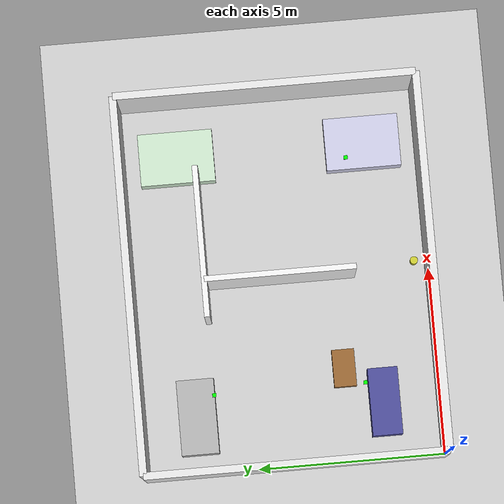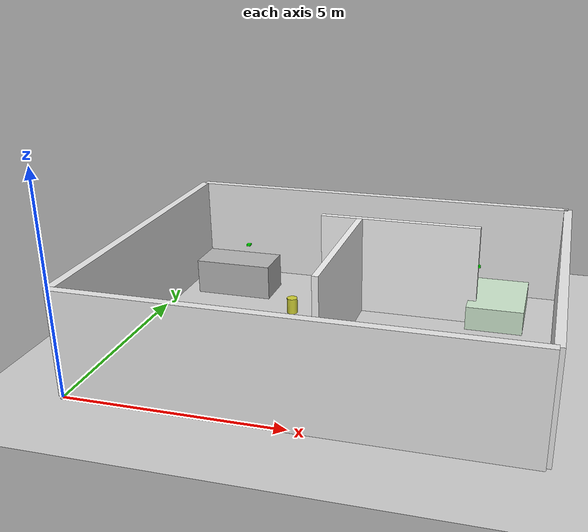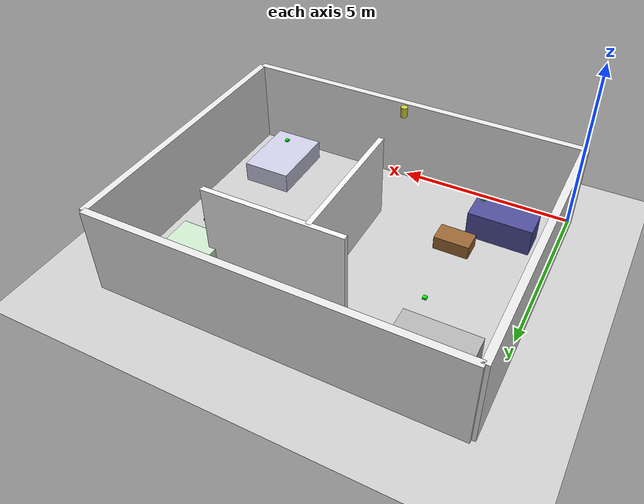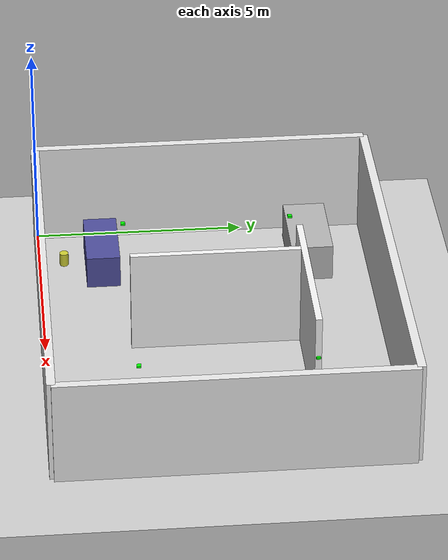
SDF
<sdf version="1.8">
 <world name="olympus_apartment">
  <physics name="default_physics" default="0" type="ode">
   <max_step_size>0.004</max_step_size>
   <real_time_factor>1.0</real_time_factor>
   <real_time_update_rate>250</real_time_update_rate>
  </physics>
  <scene>
   <sky><clouds><speed>12</speed></clouds></sky>
   <ambient>0.4 0.4 0.4 1</ambient>
   <background>0.7 0.7 0.7 1</background>
   <shadows>1</shadows>
  </scene>
  <light type="directional" name="sun">
   <pose>0 0 10 0 0 0</pose>
   <diffuse>0.8 0.8 0.8 1</diffuse>
   <specular>0.2 0.2 0.2 1</specular>
   <attenuation>
    <range>1000</range>
    <constant>0.9</constant>
    <linear>0.01</linear>
    <quadratic>0.001</quadratic>
   </attenuation>
   <direction>-0.5 0.1 -0.9</direction>
  </light>
  <light type="point" name="living_room_light">
   <pose>2 2 2.5 0 0 0</pose>
   <diffuse>1.0 1.0 0.9 1</diffuse>
   <specular>0.1 0.1 0.1 1</specular>
   <attenuation>
    <range>8</range>
    <constant>0.5</constant>
    <linear>0.2</linear>
    <quadratic>0.01</quadratic>
   </attenuation>
   <cast_shadows>false</cast_shadows>
  </light>
  <light type="point" name="bedroom1_light">
   <pose>8 2 2.5 0 0 0</pose>
   <diffuse>1.0 1.0 0.9 1</diffuse>
   <specular>0.1 0.1 0.1 1</specular>
   <attenuation>
    <range>6</range>
    <constant>0.5</constant>
    <linear>0.2</linear>
    <quadratic>0.01</quadratic>
   </attenuation>
   <cast_shadows>false</cast_shadows>
  </light>
  <light type="point" name="bedroom2_light">
   <pose>8 6 2.5 0 0 0</pose>
   <diffuse>1.0 1.0 0.9 1</diffuse>
   <specular>0.1 0.1 0.1 1</specular>
   <attenuation>
    <range>6</range>
    <constant>0.5</constant>
    <linear>0.2</linear>
    <quadratic>0.01</quadratic>
   </attenuation>
   <cast_shadows>false</cast_shadows>
  </light>
  <light type="point" name="kitchen_light">
   <pose>2 6 2.5 0 0 0</pose>
   <diffuse>1.0 1.0 0.9 1</diffuse>
   <specular>0.1 0.1 0.1 1</specular>
   <attenuation>
    <range>6</range>
    <constant>0.5</constant>
    <linear>0.2</linear>
    <quadratic>0.01</quadratic>
   </attenuation>
   <cast_shadows>false</cast_shadows>
  </light>
  <model name="ground_plane">
   <static>true</static>
   <link name="link">
    <collision name="collision">
     <geometry><plane><normal>0 0 1</normal><size>20 20</size></plane></geometry>
    </collision>
    <visual name="visual">
     <geometry><plane><normal>0 0 1</normal><size>20 20</size></plane></geometry>
     <material>
      <ambient>0.8 0.8 0.8 1</ambient>
      <diffuse>0.8 0.8 0.8 1</diffuse>
      <specular>0.0 0.0 0.0 1</specular>
     </material>
    </visual>
   </link>
  </model>
  <model name="wall_north">
   <static>true</static>
   <pose>5 8 1.25 0 0 0</pose>
   <link name="link">
    <collision name="collision"><geometry><box><size>10 0.2 2.5</size></box></geometry></collision>
    <visual name="visual">
     <geometry><box><size>10 0.2 2.5</size></box></geometry>
     <material><ambient>0.9 0.9 0.9 1</ambient><diffuse>0.9 0.9 0.9 1</diffuse></material>
    </visual>
   </link>
  </model>
  <model name="wall_south">
   <static>true</static>
   <pose>5 0 1.25 0 0 0</pose>
   <link name="link">
    <collision name="collision"><geometry><box><size>10 0.2 2.5</size></box></geometry></collision>
    <visual name="visual">
     <geometry><box><size>10 0.2 2.5</size></box></geometry>
     <material><ambient>0.9 0.9 0.9 1</ambient><diffuse>0.9 0.9 0.9 1</diffuse></material>
    </visual>
   </link>
  </model>
  <model name="wall_east">
   <static>true</static>
   <pose>10 4 1.25 0 0 0</pose>
   <link name="link">
    <collision name="collision"><geometry><box><size>0.2 8 2.5</size></box></geometry></collision>
    <visual name="visual">
     <geometry><box><size>0.2 8 2.5</size></box></geometry>
     <material><ambient>0.9 0.9 0.9 1</ambient><diffuse>0.9 0.9 0.9 1</diffuse></material>
    </visual>
   </link>
  </model>
  <model name="wall_west">
   <static>true</static>
   <pose>0 4 1.25 0 0 0</pose>
   <link name="link">
    <collision name="collision"><geometry><box><size>0.2 8 2.5</size></box></geometry></collision>
    <visual name="visual">
     <geometry><box><size>0.2 8 2.5</size></box></geometry>
     <material><ambient>0.9 0.9 0.9 1</ambient><diffuse>0.9 0.9 0.9 1</diffuse></material>
    </visual>
   </link>
  </model>
  <model name="wall_interior_1">
   <static>true</static>
   <pose>5 4 1.25 0 0 1.5708</pose>
   <link name="link">
    <collision name="collision"><geometry><box><size>4 0.15 2.5</size></box></geometry></collision>
    <visual name="visual">
     <geometry><box><size>4 0.15 2.5</size></box></geometry>
     <material><ambient>0.95 0.95 0.95 1</ambient><diffuse>0.95 0.95 0.95 1</diffuse></material>
    </visual>
   </link>
  </model>
  <model name="wall_interior_2">
   <static>true</static>
   <pose>6 6 1.25 0 0 0</pose>
   <link name="link">
    <collision name="collision"><geometry><box><size>4 0.15 2.5</size></box></geometry></collision>
    <visual name="visual">
     <geometry><box><size>4 0.15 2.5</size></box></geometry>
     <material><ambient>0.95 0.95 0.95 1</ambient><diffuse>0.95 0.95 0.95 1</diffuse></material>
    </visual>
   </link>
  </model>
  <model name="sofa">
   <static>true</static>
   <pose>1.5 1.5 0.4 0 0 0</pose>
   <link name="link">
    <collision name="collision"><geometry><box><size>1.8 0.8 0.8</size></box></geometry></collision>
    <visual name="visual">
     <geometry><box><size>1.8 0.8 0.8</size></box></geometry>
     <material><ambient>0.3 0.3 0.6 1</ambient><diffuse>0.3 0.3 0.6 1</diffuse></material>
    </visual>
   </link>
  </model>
  <model name="coffee_table">
   <static>true</static>
   <pose>2.5 2.5 0.2 0 0 0</pose>
   <link name="link">
    <collision name="collision"><geometry><box><size>1.0 0.6 0.4</size></box></geometry></collision>
    <visual name="visual">
     <geometry><box><size>1.0 0.6 0.4</size></box></geometry>
     <material><ambient>0.6 0.4 0.2 1</ambient><diffuse>0.6 0.4 0.2 1</diffuse></material>
    </visual>
   </link>
  </model>
  <model name="bed1">
   <static>true</static>
   <pose>8.5 1.5 0.3 0 0 0</pose>
   <link name="link">
    <collision name="collision"><geometry><box><size>1.4 2.0 0.6</size></box></geometry></collision>
    <visual name="visual">
     <geometry><box><size>1.4 2.0 0.6</size></box></geometry>
     <material><ambient>0.8 0.8 0.9 1</ambient><diffuse>0.8 0.8 0.9 1</diffuse></material>
    </visual>
   </link>
  </model>
  <model name="bed2">
   <static>true</static>
   <pose>8.5 6.5 0.3 0 0 0</pose>
   <link name="link">
    <collision name="collision"><geometry><box><size>1.4 2.0 0.6</size></box></geometry></collision>
    <visual name="visual">
     <geometry><box><size>1.4 2.0 0.6</size></box></geometry>
     <material><ambient>0.8 0.9 0.8 1</ambient><diffuse>0.8 0.9 0.8 1</diffuse></material>
    </visual>
   </link>
  </model>
  <model name="kitchen_counter">
   <static>true</static>
   <pose>1.5 6.5 0.45 0 0 0</pose>
   <link name="link">
    <collision name="collision"><geometry><box><size>2.0 1.0 0.9</size></box></geometry></collision>
    <visual name="visual">
     <geometry><box><size>2.0 1.0 0.9</size></box></geometry>
     <material><ambient>0.7 0.7 0.7 1</ambient><diffuse>0.7 0.7 0.7 1</diffuse></material>
    </visual>
   </link>
  </model>
  <model name="sensor_node_0">
   <static>true</static>
   <pose>2 2 1.5 0 0 0</pose>
   <link name="link">
    <visual name="visual">
     <geometry><box><size>0.1 0.1 0.05</size></box></geometry>
     <material><ambient>0 1 0 1</ambient><diffuse>0 1 0 1</diffuse><emissive>0 0.3 0 1</emissive></material>
    </visual>
   </link>
  </model>
  <model name="sensor_node_1">
   <static>true</static>
   <pose>8 2 1.5 0 0 0</pose>
   <link name="link">
    <visual name="visual">
     <geometry><box><size>0.1 0.1 0.05</size></box></geometry>
     <material><ambient>0 1 0 1</ambient><diffuse>0 1 0 1</diffuse><emissive>0 0.3 0 1</emissive></material>
    </visual>
   </link>
  </model>
  <model name="sensor_node_2">
   <static>true</static>
   <pose>8 6 1.5 0 0 0</pose>
   <link name="link">
    <visual name="visual">
     <geometry><box><size>0.1 0.1 0.05</size></box></geometry>
     <material><ambient>0 1 0 1</ambient><diffuse>0 1 0 1</diffuse><emissive>0 0.3 0 1</emissive></material>
    </visual>
   </link>
  </model>
  <model name="sensor_node_3">
   <static>true</static>
   <pose>2 6 1.5 0 0 0</pose>
   <link name="link">
    <visual name="visual">
     <geometry><box><size>0.1 0.1 0.05</size></box></geometry>
     <material><ambient>0 1 0 1</ambient><diffuse>0 1 0 1</diffuse><emissive>0 0.3 0 1</emissive></material>
    </visual>
   </link>
  </model>
  <model name="sensor_node_4">
   <static>true</static>
   <pose>5 4 1.5 0 0 0</pose>
   <link name="link">
    <visual name="visual">
     <geometry><box><size>0.1 0.1 0.05</size></box></geometry>
     <material><ambient>0 1 0 1</ambient><diffuse>0 1 0 1</diffuse><emissive>0 0.3 0 1</emissive></material>
    </visual>
   </link>
  </model>
  <model name="hall_lamp">
   <static>true</static>
   <pose>5 0.5 2.5 0 0 0</pose>
   <link name="link">
    <visual name="visual">
     <geometry><cylinder><radius>0.1</radius><length>0.3</length></cylinder></geometry>
     <material>
      <ambient>0.8 0.8 0.2 1</ambient>
      <diffuse>0.8 0.8 0.2 1</diffuse>
      <emissive>0 0 0 1</emissive>
     </material>
    </visual>
    <collision name="collision">
     <geometry><cylinder><radius>0.1</radius><length>0.3</length></cylinder></geometry>
    </collision>
   </link>
   <plugin name="lamp_control_plugin" filename="libgz-sim-lamp.so"/>
  </model>
 </world>
</sdf>
